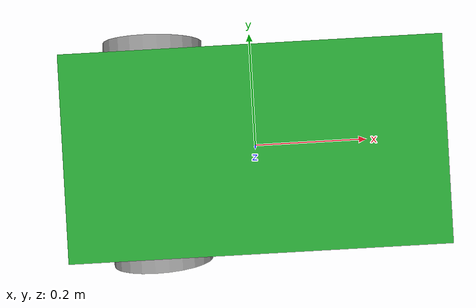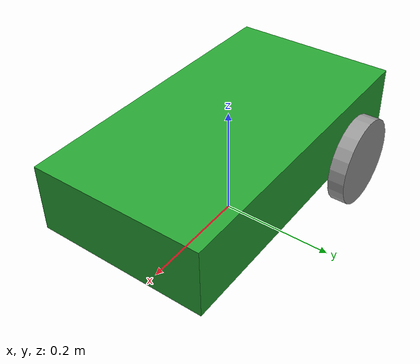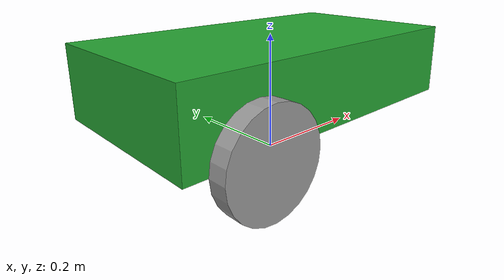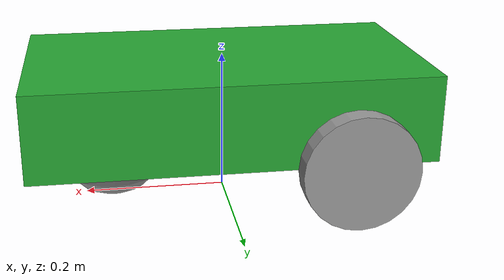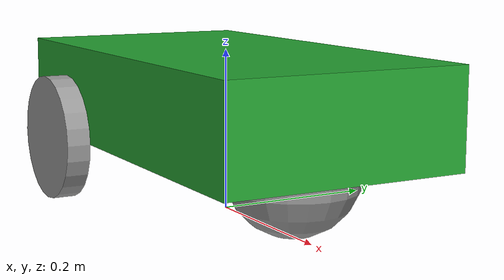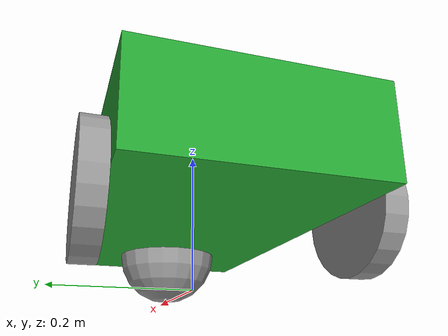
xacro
<?xml version="1.0"?>
<robot name="diff_drive" xmlns:xacro="http://www.ros.org/wiki/xacro">

<!-- ================================ CONSTANTS =============================== -->
<xacro:property name="pi_const" value="3.14159265"/>

<!-- ================================= BODY =================================== -->
<xacro:property name="a" value="0.55"  />
<xacro:property name="b" value="0.12" />
<xacro:property name="c" value="0.30"/>

<!-- ================================= WHEELS ================================= -->
<xacro:property name="r" value="0.08" />
<xacro:property name="d" value="0.03"/>

<!-- ============================= Body constants ============================= -->
<xacro:property name="s1" value="${b/2+r}"/>
<xacro:property name="s2" value="${2*r}"/>
<xacro:property name="s3" value="${2*r}"/>
<xacro:property name="s4" value="${c/2+d/2}"/>

<!-- ============================== MATERIAL DENSITY ========================== -->
<xacro:property name="d1" value="381.0"/> <!-- Body -->
<xacro:property name="d2" value="500.0"/> <!-- Wheels -->
<xacro:property name="d3" value="100.0"/> <!-- Caster -->

<!-- ================================== MASS ================================== -->
<xacro:property name="m1" value="${d1*a*b*c}"/> <!-- Body -->
<xacro:property name="m2" value="${d2*pi_const*r*r*d}"/> <!-- Wheels -->
<xacro:property name="m3" value="${d3*(4.0/3.0)*pi_const*r*r*r}"/> <!-- Caster -->

<!-- ================== MOMENTS OF INERTIA OF THE ROBOT BODY ================== -->
<xacro:property name="Ix_body"  value="${(1/12)*m1*(b*b+c*c) }" />
<xacro:property name="Iy_body"  value="${(1/12)*m1*(a*a+b*b) }" />
<xacro:property name="Iz_body"  value="${(1/12)*m1*(a*a+c*c) }" />

<!-- ================= MOMENTS OF INERTIA OF THE ROBOT WHEELS ================= -->
<xacro:property name="Iz_wheel" value="${0.5*m2*r*r}" />
<xacro:property name="I_wheel"  value="${(1.0/12.0)*m2*(3.0*r*r+d*d)}" />

<!-- ================ MOMENTS OF INERTIA OF THE CASTER SPHERE ================= -->
<xacro:property name="I_caster" value="${(2.0/5.0)*m3*r*r}" />

<!-- ==================== INERTIAL SECTION OF THE ROBOT BODY ================== -->
<xacro:macro name="inertia_body">
	<inertial>
	<!-- r = row, p = pitch, y = yaw -->
	<origin rpy="0 0 0" xyz="0 0 ${s1}"/>
	<mass value="${m1}"/>
	<inertia ixx="${Ix_body}" ixy="0.0" ixz="0.0" iyy="${Iy_body}" iyz="0" izz="${Iz_body}" />
	</inertial>
</xacro:macro>

<!-- ==================== INERTIAL SECTION OF THE WHEELS ====================== -->
<xacro:macro name="inertia_wheel">
	<inertial>
	<origin rpy="1.57079632 0 0" xyz="0 0 0"/> <!-- 90 degrees in radians -->
	<mass value="${m2}"/>
	<inertia ixx="${I_wheel}" ixy="0.0" ixz="0.0" iyy="${I_wheel}" iyz="0" izz="${Iz_wheel}" />
	</inertial>
</xacro:macro>

<!-- ==================== INERTIAL SECTION OF THE CASTER ====================== -->
<xacro:macro name="inertia_caster">
	<inertial>
	<origin rpy="0 0 0" xyz="0 0 0"/>
	<mass value="${m3}"/>
	<inertia ixx="${I_caster}" ixy="0.0" ixz="0.0" iyy="${I_caster}" iyz="0" izz="${I_caster}" />
	</inertial>
</xacro:macro>

<!-- ========================== ADDITIONAL PARAMETERS ========================= -->
<xacro:include filename="$(find multiagent_deep_rl_sim)/models/diff_drive/robot.gazebo"/>

<link name="base_footprint"> </link>
<joint name="body_link_joint" type="fixed">
	<parent link="base_footprint"/>
	<child link="body_link"/>
</joint>

<!-- =============================== BODY LINK ================================ -->
<link name="body_link">
	<visual>
		<geometry>
			<box size="${a} ${c} ${b}" />
		</geometry>
	<!-- Coordinate system attached to the body link joint -->
	<origin rpy="0 0 0" xyz="0 0 ${s1}"/>
	</visual>

	<!-- Specify how much space the robot consumes -->
	<collision>
		<geometry>
			<box size="${a} ${c} ${b}" />
		</geometry>
		<origin rpy="0 0 0" xyz="0 0 ${s1}"/>
	</collision>

	<xacro:inertia_body />
</link>

<!-- ================ BACK RIGHT WHEEL OF THE ROBOT AND JOINT ================= -->
<joint name="wheel1_joint" type="continuous" >
	<parent link="body_link"/>
	<child  link="wheel1_link" />
	<origin xyz="${-s2} ${-s4} ${r}" rpy="0 0 0" /> <!-- Link frame body link -->
	<axis xyz="0 1 0"/>
	<limit effort="50000" velocity="10"/>
	<dynamics damping="1.0" friction="1.0"/>
</joint>

<link name="wheel1_link">
	<visual>
		<origin rpy="1.57079632 0 0" xyz="0 0 0"/>
		<geometry>
			<cylinder length="${d}" radius="${r}"/>
		</geometry>
	</visual>

	<collision>
		<origin rpy="1.57079632 0 0" xyz="0 0 0"/>
		<geometry>
			<cylinder length="${d}" radius="${r}"/>
		</geometry>
	</collision>

	<xacro:inertia_wheel />
</link>

<!-- ================= BACK LEFT WHEEL OF THE ROBOT AND JOINT ================= -->
<joint name="wheel2_joint" type="continuous" >
	<parent link="body_link"/>
	<child  link="wheel2_link" />
	<origin xyz="${-s2} ${s4} ${r}" rpy="0 0 0" />
	<axis xyz="0 1 0"/>
	<limit effort="50000" velocity="10"/>
	<dynamics damping="1.0" friction="1.0"/>
</joint>

<link name="wheel2_link">
	<visual>
		<origin rpy="1.57079632 0 0" xyz="0 0 0"/>
		<geometry>
			<cylinder length="${d}" radius="${r}"/>
		</geometry>
	</visual>

	<collision>
		<origin rpy="1.57079632 0 0" xyz="0 0 0"/>
		<geometry>
			<cylinder length="${d}" radius="${r}"/>
		</geometry>
	</collision>
	<xacro:inertia_wheel />
</link>

<!-- ============================= CASTER WHEEL =============================== -->
<joint name="caster_joint" type="fixed">
        <parent link="body_link"/>
        <child link="caster_link"/>
        <origin xyz="${s3} 0 ${r}" rpy="0 0 0"/>
</joint>

<link name="caster_link">
	<visual>
		<origin rpy="0 0 0" xyz="0 0 0"/>
		<geometry>
			<sphere radius="${r}" />
		</geometry>
	</visual>

	<collision>
		<origin rpy="0 0 0" xyz="0 0 0"/>
		<geometry>
			<sphere radius="${r}" />
		</geometry>
	</collision>
	<xacro:inertia_caster />
</link>

</robot>
